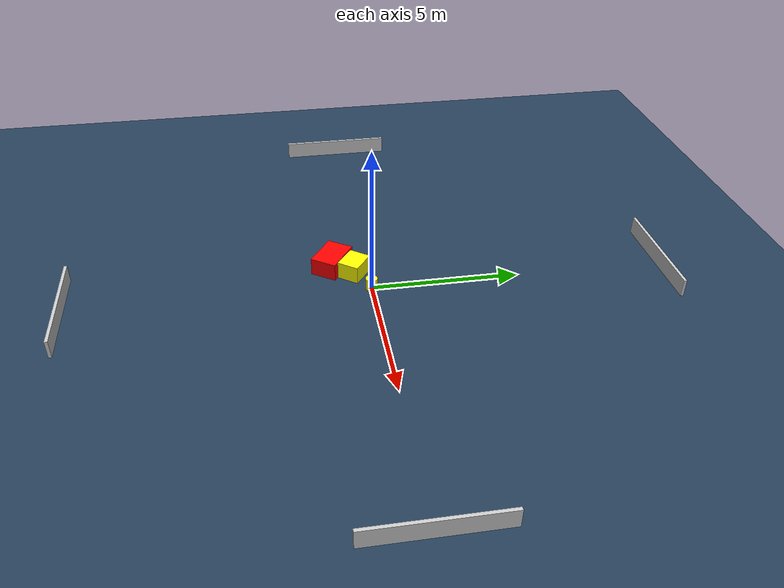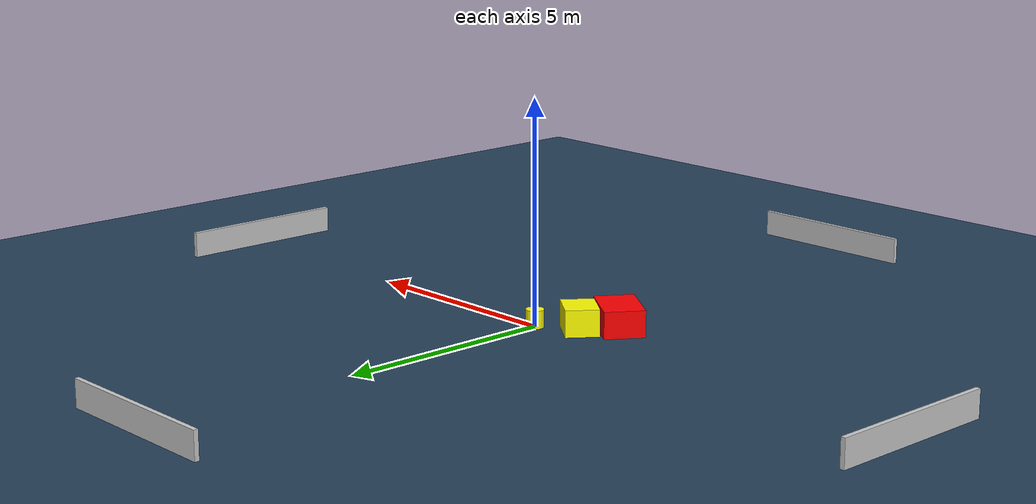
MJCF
<?xml version="1.0" ?>
<mujoco model="generated_environment">
  <option timestep="0.01" integrator="RK4" cone="elliptic"/>
  <default>
    <geom density="1"/>
  </default>
  <asset>
    <texture builtin="gradient" height="3072" name="skybox" rgb1="0.3 0.5 0.7" rgb2="0 0 0" type="skybox" width="512"/>
    <texture builtin="checker" height="300" name="groundplane" rgb1="0.2 0.3 0.4" rgb2="0.1 0.2 0.3" type="2d" width="300"/>
    <material name="groundplane" reflectance="0.2" texrepeat="5 5" texture="groundplane"/>
  </asset>
  <worldbody>
    <light dir="0 0 -1" directional="true" pos="0 0 1.5"/>
    <geom condim="3" friction="0.5 0.005 0.001" material="groundplane" name="floor" pos="0 0 0" size="0 0 0.05" type="plane"/>
    <body name="walls">
      <geom name="wall_1" condim="4" pos="-10.0 0.0 0.3" rgba="0.800000011920929 0.800000011920929 0.800000011920929 1.0" size="0.05 2.0 0.3" type="box"/>
      <geom name="wall_2" condim="4" pos="10.0 0.0 0.3" rgba="0.800000011920929 0.800000011920929 0.800000011920929 1.0" size="0.05 2.0 0.3" type="box"/>
      <geom name="wall_3" condim="4" pos="0.0 -10.0 0.3" rgba="0.800000011920929 0.800000011920929 0.800000011920929 1.0" size="2.0 0.05 0.3" type="box"/>
      <geom name="wall_4" condim="4" pos="0.0 10.0 0.3" rgba="0.800000011920929 0.800000011920929 0.800000011920929 1.0" size="2.0 0.05 0.3" type="box"/>
    </body>
    <body name="robot">
      <joint name="joint_x" type="slide" pos="0 0 0" axis="1 0 0"/>
      <joint name="joint_y" type="slide" pos="0 0 0" axis="0 1 0"/>
      <geom name="robot" type="cylinder" pos="0.0 0.0 0.2" size="0.2 0.2 0.0" mass="5.0" friction="1.0 0.005 0.0001" condim="4" rgba="1.0 1.0 0.0 1.0"/>
    </body>
    <body name="obstacle_1_movable">
      <geom name="obstacle_1_movable" condim="4" pos="-0.9112112011181316 -0.46175541683777266 0.3" euler="0 0 233.38261478693718" friction="0.0 0.005 0.001" rgba="1.0 1.0 0.0 1.0" size="0.37371817114311445 0.4444160819551294 0.3" type="box" mass="0.1"/>
      <joint type="free"/>
    </body>
    <body name="obstacle_2_static">
      <geom name="obstacle_2_static" condim="4" pos="-1.4108610652261806 -1.1537800501334714 0.3" euler="0 0 145.67596905324245" friction="0.0 0.005 0.001" rgba="1.0 0.0 0.0 1.0" size="0.6449194965591898 0.45157546758509465 0.3" type="box"/>
    </body>
  </worldbody>
  <actuator>
    <motor name="actuator_x" joint="joint_x" gear="1" ctrlrange="-1 1"/>
    <motor name="actuator_y" joint="joint_y" gear="1" ctrlrange="-1 1"/>
  </actuator>
</mujoco>
